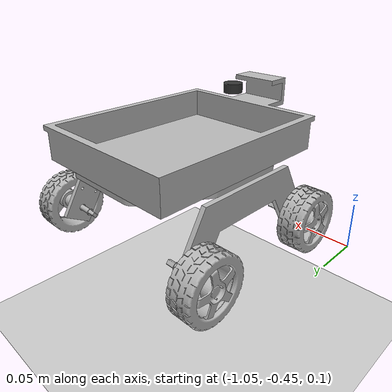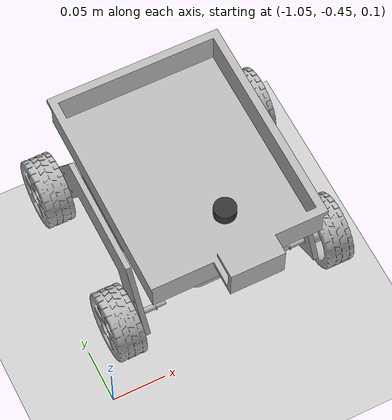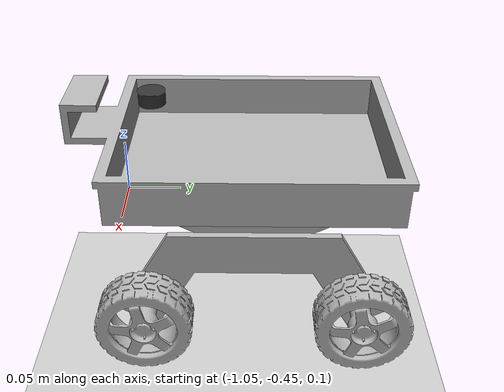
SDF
<sdf version="1.9">
 <world name="warehouse_world">
  <plugin filename="gz-sim-physics-system" name="gz::sim::systems::Physics"/>
  <plugin filename="gz-sim-user-commands-system" name="gz::sim::systems::UserCommands"/>
  <plugin filename="gz-sim-scene-broadcaster-system" name="gz::sim::systems::SceneBroadcaster"/>
  <plugin filename="gz-sim-contact-system" name="gz::sim::systems::Contact"/>
  <scene>
   <grid>false</grid>
   <origin_visual>false</origin_visual>
   <ambient>0.5 0.5 0.5 1</ambient>
   <background>0.5 0.7 1.0 1</background>
  </scene>
  <light name="warehouse_light" type="point">
   <pose>0 0 2 0 0 0</pose>
   <diffuse>0.7 0.7 0.7 1</diffuse>
   <specular>0.2 0.2 0.2 1</specular>
   <attenuation>
    <range>15</range>
    <constant>0.5</constant>
    <linear>0.01</linear>
    <quadratic>0.001</quadratic>
   </attenuation>
  </light>
  <model name="ground_plane">
   <static>true</static>
   <link name="link">
    <collision name="collision">
     <geometry><plane><normal>0 0 1</normal><size>50 50</size></plane></geometry>
     <surface>
      <friction>
       <ode><mu>1.5</mu><mu2>1.5</mu2><fdir1>0 0 0</fdir1><slip1>0.0</slip1><slip2>0.0</slip2></ode>
      </friction>
      <contact><ode><kp>1e6</kp><kd>100</kd></ode></contact>
     </surface>
    </collision>
    <visual name="visual"><geometry><plane><normal>0 0 1</normal><size>50 50</size></plane></geometry></visual>
   </link>
  </model>
  <include>
   <uri>file:///home/ishan/Documents/ros_mobile_robot/src/mobile_robot/sdf/</uri>
   <pose>-1 -0.43 0.2 0 0 0</pose>
  </include>
 </world>
</sdf>

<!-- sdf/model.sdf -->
<sdf version="1.9">
  <model name="finalassembly_v3">

    <!-- BASE -->
    <link name="base_link_1">
      <inertial>
        <pose>0.08000000000000008 0.09545598293362575 0.0068908634732035455 0 0 0</pose>
        <mass>3.9409647200439992</mass>
        <inertia>
          <ixx>0.017709947701599185</ixx>
          <ixy>1.7694179454963432e-16</ixy>
          <ixz>-8.673617379884035e-19</ixz>
          <iyy>0.013743217946582138</iyy>
          <iyz>0.000759111480018366</iyz>
          <izz>0.0282437401639066</izz>
        </inertia>
      </inertial>

      <visual name="base_link_1__body1_visual">
        <geometry><mesh><scale>0.01 0.01 0.01</scale><uri>meshes/base_link_1/body1_visual.obj</uri></mesh></geometry>
      </visual>
      <visual name="base_link_1__body2_visual">
        <geometry><mesh><scale>0.01 0.01 0.01</scale><uri>meshes/base_link_1/body2_visual.obj</uri></mesh></geometry>
      </visual>
      <visual name="base_link_1__body3_visual">
        <geometry><mesh><scale>0.01 0.01 0.01</scale><uri>meshes/base_link_1/body3_visual.obj</uri></mesh></geometry>
      </visual>
      <visual name="base_link_1__body4_visual">
        <geometry><mesh><scale>0.01 0.01 0.01</scale><uri>meshes/base_link_1/body4_visual.obj</uri></mesh></geometry>
      </visual>

      <collision name="base_link_collision">
        <pose>0.08 0.08 0.015 0 0 0</pose>
        <geometry>
          <box><size>0.16 0.24 0.08</size></box>
        </geometry>
      </collision>
    </link>

    <!-- FRONT LEFT WHEEL -->
    <link name="front_left_wheel_1">
      <inertial>
        <pose>0.18119913055959916 0.02650941058119064 -0.058006850665017165 0 0 0</pose>
        <mass>0.23963195508574156</mass>
        <inertia>
          <ixx>6.17e-05</ixx>
          <iyy>6.17e-05</iyy>
          <izz>1.23e-04</izz>
          <ixy>0</ixy><ixz>0</ixz><iyz>0</iyz>
        </inertia>
      </inertial>
      <visual name="fl_v1">
        <geometry><mesh><scale>0.01 0.01 0.01</scale><uri>meshes/front_left_wheel_1/body1_visual.obj</uri></mesh></geometry>
      </visual>
      <visual name="fl_v2">
        <geometry><mesh><scale>0.01 0.01 0.01</scale><uri>meshes/front_left_wheel_1/body2_visual.obj</uri></mesh></geometry>
      </visual>
      <collision name="wheel_collision">
        <pose>0.1801 0.0265 -0.058 1.5708 0 1.5708</pose>
        <geometry>
          <cylinder><radius>0.032</radius><length>0.028</length></cylinder>
        </geometry>
      </collision>
    </link>

    <!-- REAR LEFT WHEEL -->
    <link name="rear_left_wheel_1">
      <inertial>
        <pose>0.18119913055959913 0.17349016693742006 -0.05800685066501671 0 0 0</pose>
        <mass>0.23963195508574073</mass>
        <inertia>
          <ixx>6.17e-05</ixx>
          <iyy>6.17e-05</iyy>
          <izz>1.23e-04</izz>
          <ixy>0</ixy><ixz>0</ixz><iyz>0</iyz>
        </inertia>
      </inertial>
      <visual name="rl_v1">
        <geometry><mesh><scale>0.01 0.01 0.01</scale><uri>meshes/rear_left_wheel_1/body1_visual.obj</uri></mesh></geometry>
      </visual>
      <visual name="rl_v2">
        <geometry><mesh><scale>0.01 0.01 0.01</scale><uri>meshes/rear_left_wheel_1/body2_visual.obj</uri></mesh></geometry>
      </visual>
      <collision name="wheel_collision">
        <pose>0.1801 0.1735 -0.058 1.5708 0 1.5708</pose>
        <geometry>
          <cylinder><radius>0.032</radius><length>0.028</length></cylinder>
        </geometry>
      </collision>
    </link>

    <!-- FRONT RIGHT WHEEL -->
    <link name="front_right_wheel_1">
      <inertial>
        <pose>-0.021199138957676604 0.02650982708653022 -0.058006862365527455 0 0 0</pose>
        <mass>0.23963191405046214</mass>
        <inertia>
          <ixx>6.17e-05</ixx>
          <iyy>6.17e-05</iyy>
          <izz>1.23e-04</izz>
          <ixy>0</ixy><ixz>0</ixz><iyz>0</iyz>
        </inertia>
      </inertial>
      <visual name="fr_v1">
        <geometry><mesh><scale>0.01 0.01 0.01</scale><uri>meshes/front_right_wheel_1/body1_visual.obj</uri></mesh></geometry>
      </visual>
      <visual name="fr_v2">
        <geometry><mesh><scale>0.01 0.01 0.01</scale><uri>meshes/front_right_wheel_1/body2_visual.obj</uri></mesh></geometry>
      </visual>
      <collision name="wheel_collision">
        <pose>-0.0201 0.0265 -0.058 1.5708 0 1.5708</pose>
        <geometry>
          <cylinder><radius>0.032</radius><length>0.028</length></cylinder>
        </geometry>
      </collision>
    </link>

    <!-- REAR RIGHT WHEEL -->
    <link name="rear_right_wheel_1">
      <inertial>
        <pose>-0.021199138957676535 0.17349058344363225 -0.05800686236552762 0 0 0</pose>
        <mass>0.23963191405045922</mass>
        <inertia>
          <ixx>6.17e-05</ixx>
          <iyy>6.17e-05</iyy>
          <izz>1.23e-04</izz>
          <ixy>0</ixy><ixz>0</ixz><iyz>0</iyz>
        </inertia>
      </inertial>
      <visual name="rr_v1">
        <geometry><mesh><scale>0.01 0.01 0.01</scale><uri>meshes/rear_right_wheel_1/body1_visual.obj</uri></mesh></geometry>
      </visual>
      <visual name="rr_v2">
        <geometry><mesh><scale>0.01 0.01 0.01</scale><uri>meshes/rear_right_wheel_1/body2_visual.obj</uri></mesh></geometry>
      </visual>
      <collision name="wheel_collision">
        <pose>-0.0201 0.1735 -0.058 1.5708 0 1.5708</pose>
        <geometry>
          <cylinder><radius>0.032</radius><length>0.028</length></cylinder>
        </geometry>
      </collision>
    </link>

    <!-- JOINTS -->
    <joint name="front_left_joint" type="revolute">
      <pose>0.165 0.0265 -0.058 0 0 0</pose>
      <parent>base_link_1</parent>
      <child>front_left_wheel_1</child>
      <axis>
        <xyz>1 0 0</xyz>
        <dynamics><damping>0.2</damping><friction>0.05</friction></dynamics>
        <limit><lower>-1000000</lower><upper>1000000</upper><effort>1000</effort>
  <velocity>100</velocity></limit>
      </axis>
    </joint>

    <joint name="rear_left_joint" type="revolute">
      <pose>0.165 0.1735 -0.058 0 0 0</pose>
      <parent>base_link_1</parent>
      <child>rear_left_wheel_1</child>
      <axis>
        <xyz>1 0 0</xyz>
        <dynamics><damping>0.2</damping><friction>0.05</friction></dynamics>
        <limit><lower>-1000000</lower><upper>1000000</upper><effort>1000</effort>
  <velocity>100</velocity></limit>
      </axis>
    </joint>

    <joint name="front_right_joint" type="revolute">
      <pose>-0.005 0.0265 -0.058 0 0 0</pose>
      <parent>base_link_1</parent>
      <child>front_right_wheel_1</child>
      <axis>
        <xyz>1 0 0</xyz>
        <dynamics><damping>0.2</damping><friction>0.05</friction></dynamics>
        <limit><lower>-1000000</lower><upper>1000000</upper><effort>1000</effort>
  <velocity>100</velocity></limit>
      </axis>
    </joint>

    <joint name="rear_right_joint" type="revolute">
      <pose>-0.005 0.1735 -0.058 0 0 0</pose>
      <parent>base_link_1</parent>
      <child>rear_right_wheel_1</child>
      <axis>
        <xyz>1 0 0</xyz>
        <dynamics><damping>0.2</damping><friction>0.05</friction></dynamics>
        <limit><lower>-1000000</lower><upper>1000000</upper><effort>1000</effort>
  <velocity>100</velocity></limit>
      </axis>
    </joint>

    <link name="lidar_link">

  <pose> 0.08 0.027 0.06 0 0 0</pose>

  <inertial>
    <mass>0.1</mass>
    <inertia>
      <ixx>1e-4</ixx>
      <iyy>1e-4</iyy>
      <izz>1e-4</izz>
      <ixy>0</ixy><ixz>0</ixz><iyz>0</iyz>
    </inertia>
  </inertial>

  <!-- small visual -->
  <visual name="lidar_visual">
    <geometry>
      <cylinder>
        <radius>0.01</radius>
        <length>0.01</length>
      </cylinder>
    </geometry>
    <material>
      <ambient>0.1 0.1 0.1 1</ambient>
      <diffuse>0.2 0.2 0.2 1</diffuse>
    </material>
  </visual>

  <!-- SENSOR -->
  <sensor name="lidar_sensor" type="gpu_lidar">

  <pose>0 0 0 0 0 0</pose>
  <update_rate>10</update_rate>

  <topic>/scan</topic>
  <frame_id>lidar_link</frame_id>

  <ray>
    <scan>
      <horizontal>
        <samples>360</samples>
        <resolution>1</resolution>
        <min_angle>-3.14159</min_angle>
        <max_angle>3.14159</max_angle>
      </horizontal>
    </scan>

    <range>
      <min>0.1</min>
      <max>10.0</max>
      <resolution>0.01</resolution>
    </range>

    <noise>
      <type>gaussian</type>
      <mean>0.0</mean>
      <stddev>0.01</stddev>
    </noise>
  </ray>

  <always_on>true</always_on>
  <visualize>true</visualize>

</sensor>

</link>

<joint name="lidar_joint" type="fixed">
  <parent>base_link_1</parent>
  <child>lidar_link</child>
</joint>

    <!-- DIFF DRIVE PLUGIN -->
    <plugin filename="libignition-gazebo-diff-drive-system.so"
            name="ignition::gazebo::systems::DiffDrive">

      <left_joint>front_left_joint</left_joint>
      <left_joint>rear_left_joint</left_joint>

      <right_joint>front_right_joint</right_joint>
      <right_joint>rear_right_joint</right_joint>

      <wheel_separation>0.2002</wheel_separation>
      <wheel_radius>0.032</wheel_radius>
      <max_linear_velocity>0.5</max_linear_velocity>
      <max_angular_velocity>2.0</max_angular_velocity>

      <odom_publish_frequency>30</odom_publish_frequency>

      <topic>/cmd_vel</topic>
      <odom_topic>/odom</odom_topic>

      <frame_id>odom</frame_id>
      <child_frame_id>base_link_1</child_frame_id>

      <publish_tf>true</publish_tf>
      <tf_topic>/tf</tf_topic>

    </plugin>

  </model>
</sdf>
